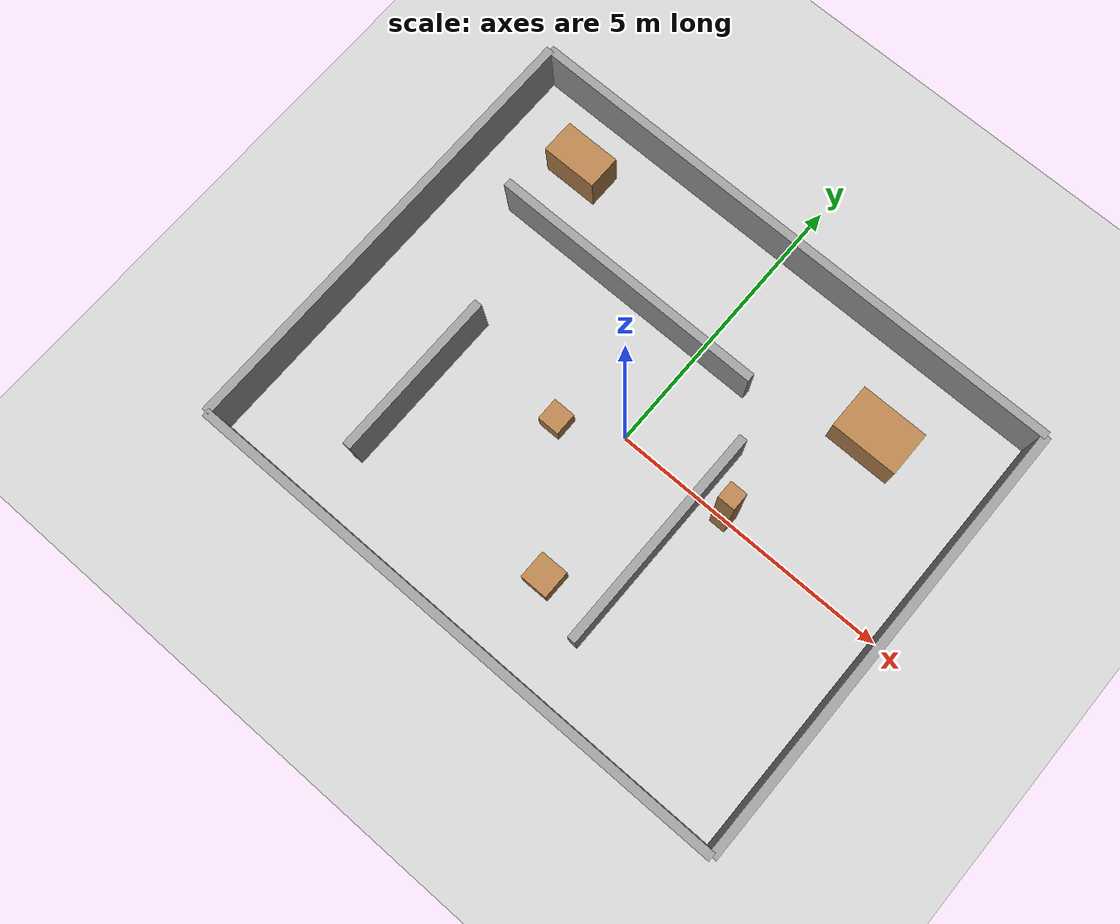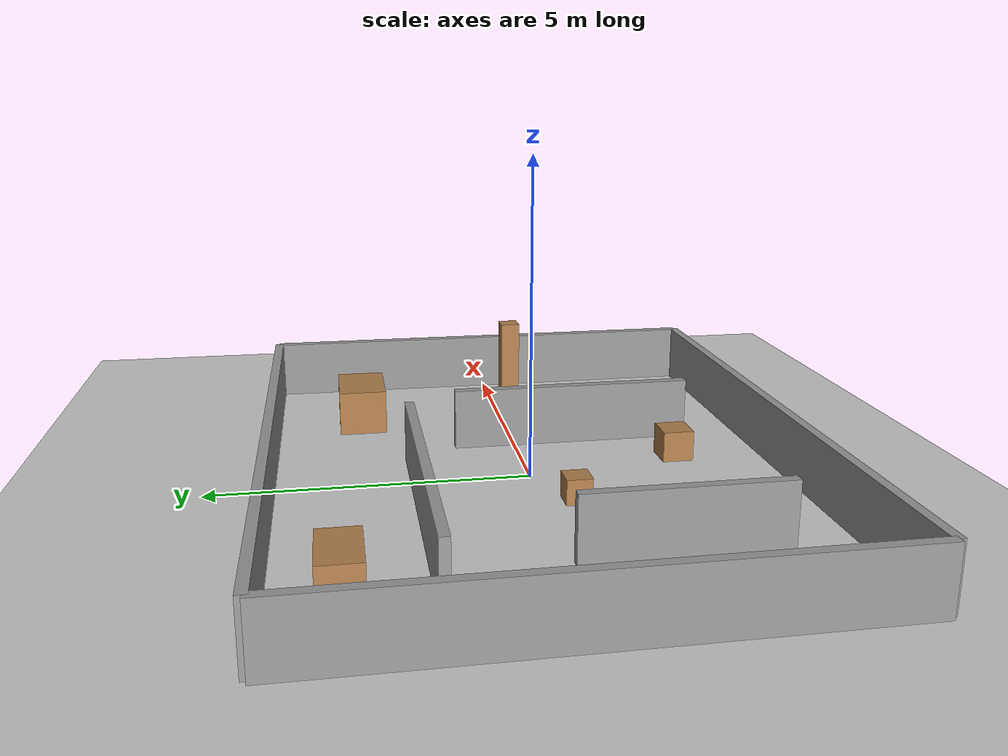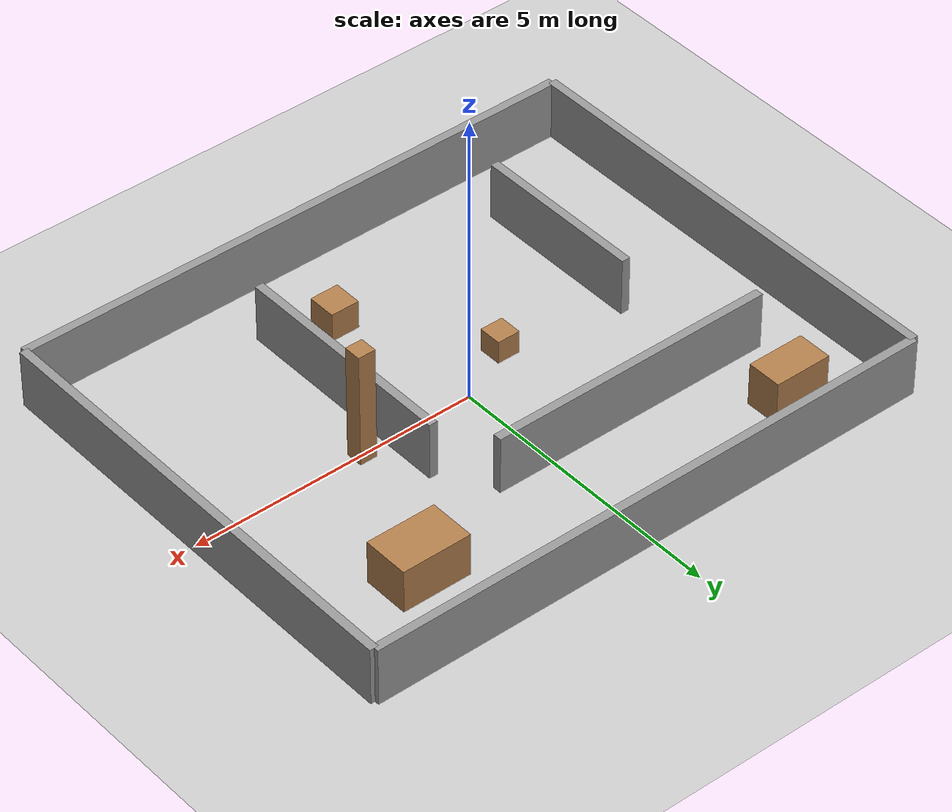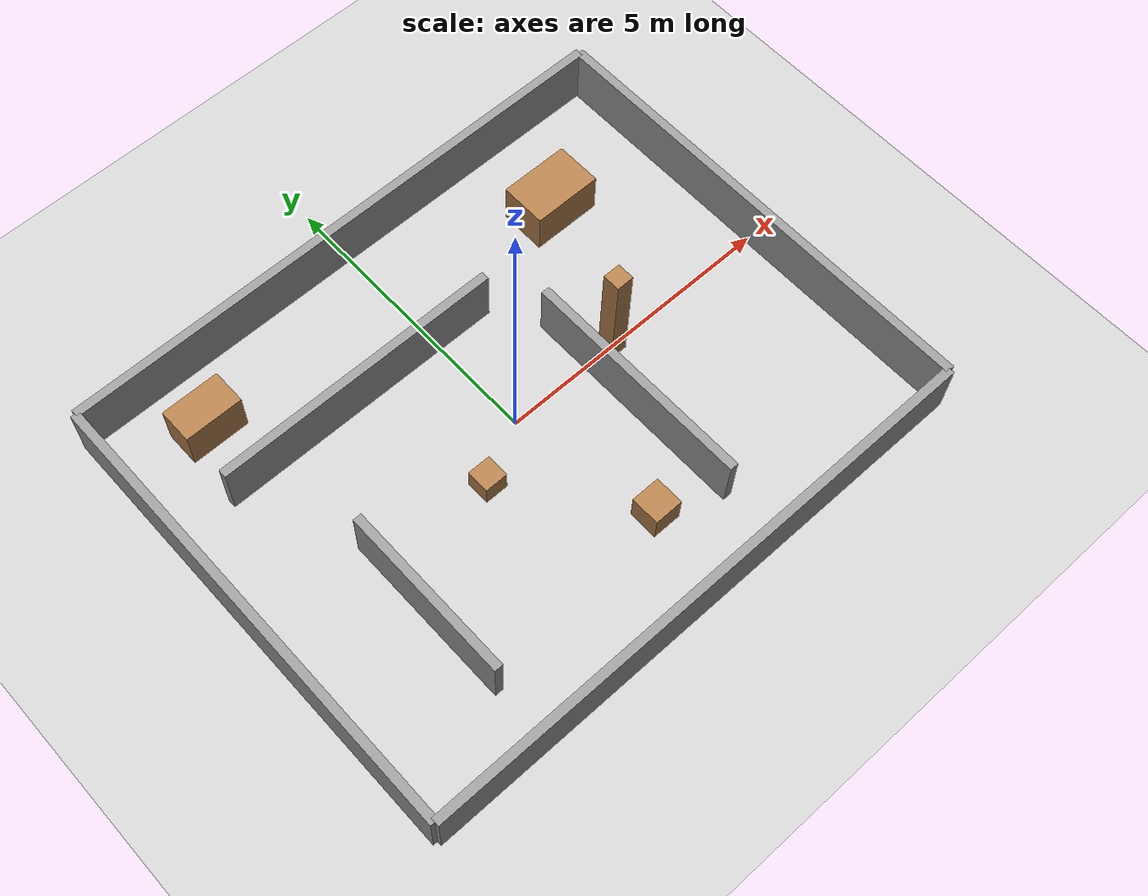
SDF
<?xml version="1.0" ?>
<sdf version="1.6">
  <world name="lab">

    <include><uri>model://sun</uri></include>
    <include><uri>model://ground_plane</uri></include>

    <physics type="ode">
      <max_step_size>0.001</max_step_size>
      <real_time_factor>1.0</real_time_factor>
      <real_time_update_rate>1000</real_time_update_rate>
    </physics>

    <scene>
      <ambient>0.5 0.5 0.5 1</ambient>
      <shadows>false</shadows>
    </scene>

    <gui>
      <camera name="user_camera">
        <pose>0 -12 10 0 0.65 1.5707963</pose>
      </camera>
    </gui>

    <model name="wall_north">
      <static>true</static>
      <pose>0.0 4.0 0.5 0 0 0.0</pose>
      <link name="link">
        <collision name="collision">
          <geometry><box><size>10.0 0.15 1.0</size></box></geometry>
        </collision>
        <visual name="visual">
          <geometry><box><size>10.0 0.15 1.0</size></box></geometry>
          <material><script><uri>file://media/materials/scripts/gazebo.material</uri>
            <name>Gazebo/Grey</name></script></material>
        </visual>
      </link>
    </model>
    <model name="wall_south">
      <static>true</static>
      <pose>0.0 -4.0 0.5 0 0 0.0</pose>
      <link name="link">
        <collision name="collision">
          <geometry><box><size>10.0 0.15 1.0</size></box></geometry>
        </collision>
        <visual name="visual">
          <geometry><box><size>10.0 0.15 1.0</size></box></geometry>
          <material><script><uri>file://media/materials/scripts/gazebo.material</uri>
            <name>Gazebo/Grey</name></script></material>
        </visual>
      </link>
    </model>
    <model name="wall_east">
      <static>true</static>
      <pose>5.0 0.0 0.5 0 0 1.5707963</pose>
      <link name="link">
        <collision name="collision">
          <geometry><box><size>8.0 0.15 1.0</size></box></geometry>
        </collision>
        <visual name="visual">
          <geometry><box><size>8.0 0.15 1.0</size></box></geometry>
          <material><script><uri>file://media/materials/scripts/gazebo.material</uri>
            <name>Gazebo/Grey</name></script></material>
        </visual>
      </link>
    </model>
    <model name="wall_west">
      <static>true</static>
      <pose>-5.0 0.0 0.5 0 0 1.5707963</pose>
      <link name="link">
        <collision name="collision">
          <geometry><box><size>8.0 0.15 1.0</size></box></geometry>
        </collision>
        <visual name="visual">
          <geometry><box><size>8.0 0.15 1.0</size></box></geometry>
          <material><script><uri>file://media/materials/scripts/gazebo.material</uri>
            <name>Gazebo/Grey</name></script></material>
        </visual>
      </link>
    </model>
    <model name="part_1">
      <static>true</static>
      <pose>-1.5 1.8 0.5 0 0 0.0</pose>
      <link name="link">
        <collision name="collision">
          <geometry><box><size>5.0 0.15 1.0</size></box></geometry>
        </collision>
        <visual name="visual">
          <geometry><box><size>5.0 0.15 1.0</size></box></geometry>
          <material><script><uri>file://media/materials/scripts/gazebo.material</uri>
            <name>Gazebo/Grey</name></script></material>
        </visual>
      </link>
    </model>
    <model name="part_2">
      <static>true</static>
      <pose>1.5 -1.0 0.5 0 0 1.5707963</pose>
      <link name="link">
        <collision name="collision">
          <geometry><box><size>4.0 0.15 1.0</size></box></geometry>
        </collision>
        <visual name="visual">
          <geometry><box><size>4.0 0.15 1.0</size></box></geometry>
          <material><script><uri>file://media/materials/scripts/gazebo.material</uri>
            <name>Gazebo/Grey</name></script></material>
        </visual>
      </link>
    </model>
    <model name="part_3">
      <static>true</static>
      <pose>-3.0 -1.5 0.5 0 0 1.5707963</pose>
      <link name="link">
        <collision name="collision">
          <geometry><box><size>3.0 0.15 1.0</size></box></geometry>
        </collision>
        <visual name="visual">
          <geometry><box><size>3.0 0.15 1.0</size></box></geometry>
          <material><script><uri>file://media/materials/scripts/gazebo.material</uri>
            <name>Gazebo/Grey</name></script></material>
        </visual>
      </link>
    </model>
    <model name="table_1">
      <static>true</static>
      <pose>3.0 2.5 0.375 0 0 0</pose>
      <link name="link">
        <collision name="collision">
          <geometry><box><size>1.2 0.8 0.75</size></box></geometry>
        </collision>
        <visual name="visual">
          <geometry><box><size>1.2 0.8 0.75</size></box></geometry>
          <material><script><uri>file://media/materials/scripts/gazebo.material</uri>
            <name>Gazebo/Wood</name></script></material>
        </visual>
      </link>
    </model>
    <model name="table_2">
      <static>true</static>
      <pose>-3.5 3.0 0.375 0 0 0</pose>
      <link name="link">
        <collision name="collision">
          <geometry><box><size>1.0 0.6 0.75</size></box></geometry>
        </collision>
        <visual name="visual">
          <geometry><box><size>1.0 0.6 0.75</size></box></geometry>
          <material><script><uri>file://media/materials/scripts/gazebo.material</uri>
            <name>Gazebo/Wood</name></script></material>
        </visual>
      </link>
    </model>
    <model name="crate_1">
      <static>true</static>
      <pose>0.5 -2.5 0.25 0 0 0</pose>
      <link name="link">
        <collision name="collision">
          <geometry><box><size>0.5 0.5 0.5</size></box></geometry>
        </collision>
        <visual name="visual">
          <geometry><box><size>0.5 0.5 0.5</size></box></geometry>
          <material><script><uri>file://media/materials/scripts/gazebo.material</uri>
            <name>Gazebo/Wood</name></script></material>
        </visual>
      </link>
    </model>
    <model name="crate_2">
      <static>true</static>
      <pose>-1.0 -0.5 0.2 0 0 0</pose>
      <link name="link">
        <collision name="collision">
          <geometry><box><size>0.4 0.4 0.4</size></box></geometry>
        </collision>
        <visual name="visual">
          <geometry><box><size>0.4 0.4 0.4</size></box></geometry>
          <material><script><uri>file://media/materials/scripts/gazebo.material</uri>
            <name>Gazebo/Wood</name></script></material>
        </visual>
      </link>
    </model>
    <model name="pillar_1">
      <static>true</static>
      <pose>2.0 0.0 1.0 0 0 0</pose>
      <link name="link">
        <collision name="collision">
          <geometry><box><size>0.3 0.3 2.0</size></box></geometry>
        </collision>
        <visual name="visual">
          <geometry><box><size>0.3 0.3 2.0</size></box></geometry>
          <material><script><uri>file://media/materials/scripts/gazebo.material</uri>
            <name>Gazebo/Wood</name></script></material>
        </visual>
      </link>
    </model>

  </world>
</sdf>
